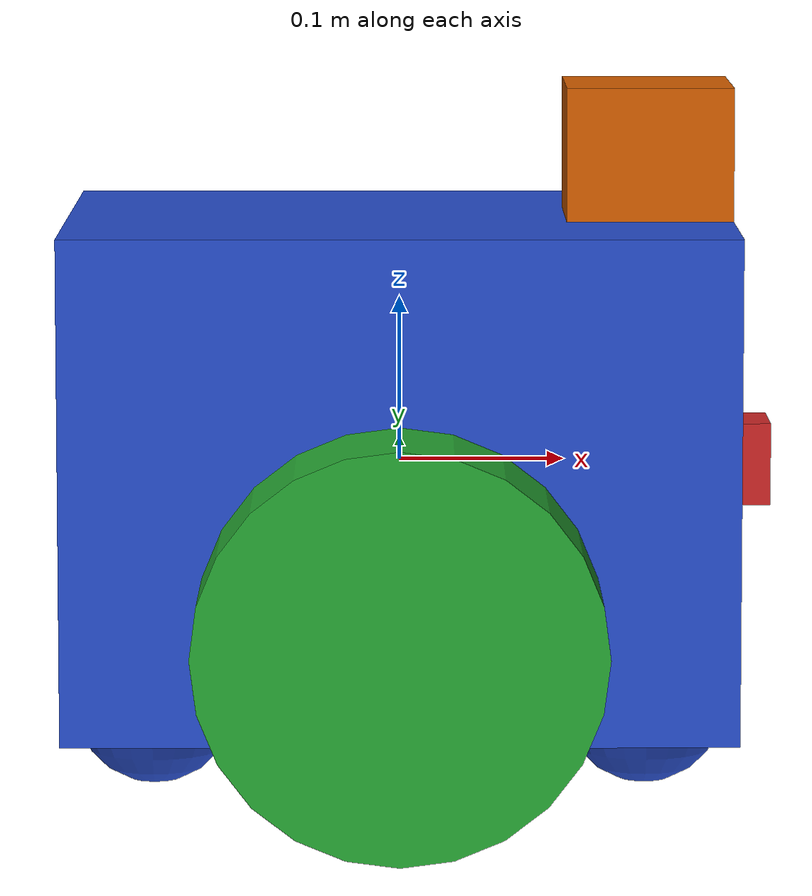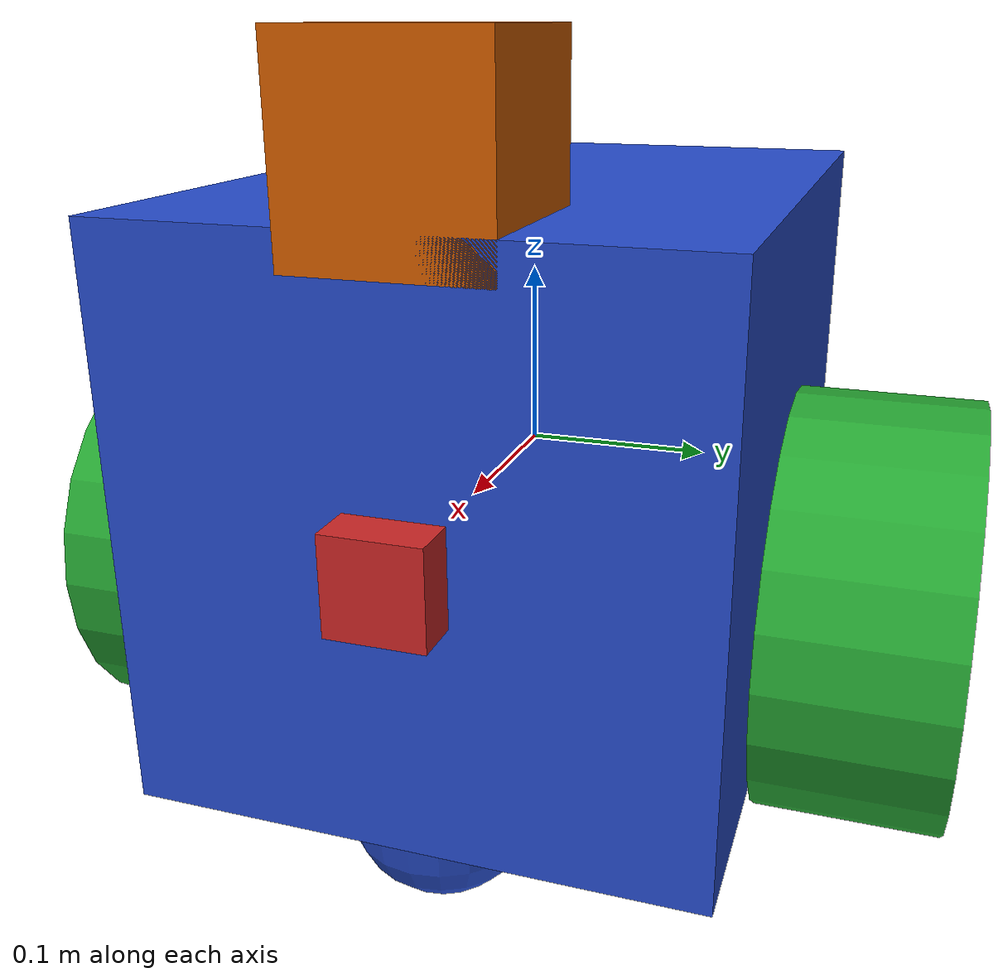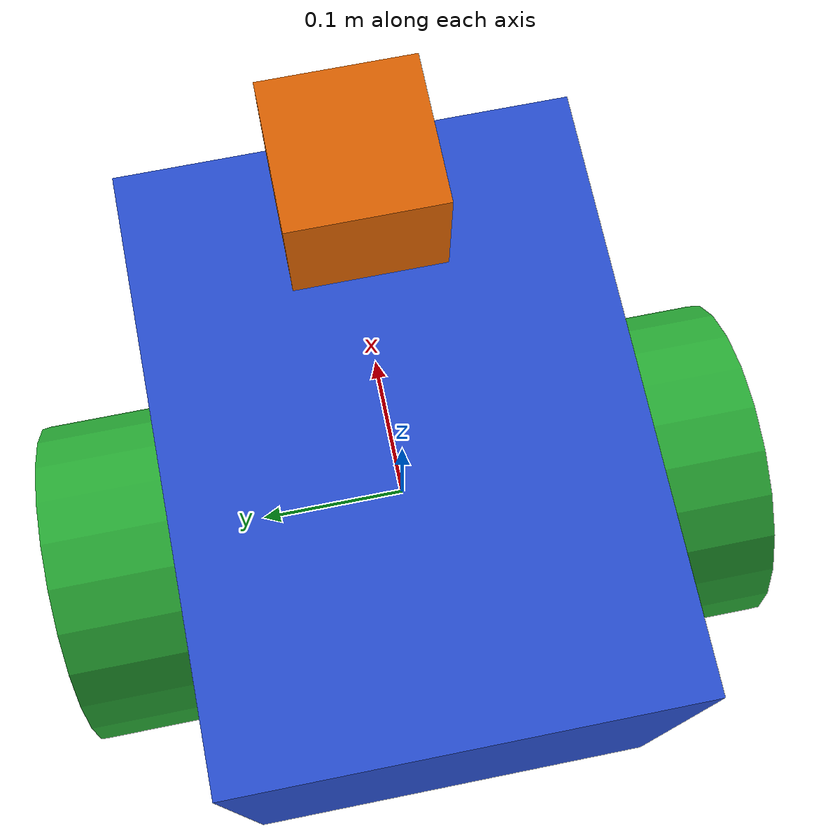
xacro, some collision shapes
<?xml version='1.0'?>

<robot name="my_robot" xmlns:xacro="http://www.ros.org/wiki/xacro">

  <xacro:include filename="$(find my_robot)/urdf/my_robot.gazebo" />

  <link name="robot_footprint"></link>

  <joint name="robot_footprint_joint" type="fixed">
    <origin xyz="0 0 0" rpy="0 0 0" />
    <parent link="robot_footprint"/>
    <child link="chassis" />
  </joint>

  <link name='chassis'>
    <pose>0 0 0.2 0 0 0</pose>

    <inertial>
      <mass value="15.0"/>
      <origin xyz="0.0 0 0" rpy=" 0 0 0"/>
      <inertia
          ixx="0.1" ixy="0" ixz="0"
          iyy="0.1" iyz="0"
          izz="0.1"
      />
    </inertial>

    <collision name='collision'>
      <origin xyz="0 0 0" rpy=" 0 0 0"/>
      <geometry>
        <box size="0.4 0.3 0.3"/>
      </geometry>
    </collision>

    <visual name='chassis_visual'>
      <origin xyz="0 0 0" rpy=" 0 0 0"/>
      <geometry>
        <box size="0.4 0.3 0.3"/>
      </geometry>
    </visual>

    <collision name='back_caster_collision'>
      <origin xyz="-0.15 0 -0.15" rpy=" 0 0 0"/>
      <geometry>
        <sphere radius="0.0499"/>
      </geometry>
    </collision>

    <visual name='back_caster_visual'>
      <origin xyz="-0.15 0 -0.15" rpy=" 0 0 0"/>
      <geometry>
        <sphere radius="0.05"/>
      </geometry>
    </visual>

    <collision name='front_caster_collision'>
      <origin xyz="0.15 0 -0.15" rpy=" 0 0 0"/>
      <geometry>
        <sphere radius="0.0499"/>
      </geometry>
    </collision>

    <visual name='front_caster_visual'>
      <origin xyz="0.15 0 -0.15" rpy=" 0 0 0"/>
      <geometry>
        <sphere radius="0.05"/>
      </geometry>
    </visual>

  </link>

  <link name="left_wheel">

    <collision>
      <origin xyz="0 0 0" rpy="0 1.5707 1.5707"/>
      <geometry>
        <cylinder length="0.1" radius="0.12"/>
      </geometry>
    </collision>

    <visual>
      <origin xyz="0 0 0" rpy="0 1.5707 1.5707"/>
      <geometry>
        <cylinder length="0.1" radius="0.12"/>
      </geometry>
    </visual>

    <inertial>
      <origin xyz="0 0 0" rpy="0 1.5707 1.5707"/>
      <mass value="5"/>
      <inertia
        ixx="0.1" ixy="0" ixz="0"
        iyy="0.1" iyz="0"
        izz="0.1"
      />
    </inertial>

  </link>

  <link name="right_wheel">

    <collision>
      <origin xyz="0 0 0" rpy="0 1.5707 1.5707"/>
      <geometry>
        <cylinder length="0.1" radius="0.12"/>
      </geometry>
    </collision>

    <visual>
      <origin xyz="0 0 0" rpy="0 1.5707 1.5707"/>
      <geometry>
        <cylinder length="0.1" radius="0.12"/>
      </geometry>
    </visual>

    <inertial>
      <origin xyz="0 0 0" rpy="0 1.5707 1.5707"/>
      <mass value="5"/>
      <inertia
        ixx="0.1" ixy="0" ixz="0"
        iyy="0.1" iyz="0"
        izz="0.1"
      />
    </inertial>

  </link>

  <joint type="continuous" name="left_wheel_hinge">
    <origin xyz="0 0.2 -0.08" rpy="0 0 0"/>
    <child link="left_wheel"/>
    <parent link="chassis"/>
    <axis xyz="0 1 0" rpy="0 0 0"/>
    <limit effort="10000" velocity="1000"/>
    <dynamics damping="1.0" friction="1.0"/>
  </joint>

  <joint type="continuous" name="right_wheel_hinge">
    <origin xyz="0 -0.2 -0.08" rpy="0 0 0"/>
    <child link="right_wheel"/>
    <parent link="chassis"/>
    <axis xyz="0 1 0" rpy="0 0 0"/>
    <limit effort="10000" velocity="1000"/>
    <dynamics damping="1.0" friction="1.0"/>
  </joint>

  <link name="camera">

    <collision>
      <origin xyz="0 0 0" rpy="0 0 0"/>
      <geometry>
        <box size="0.05 0.05 0.05"/>
      </geometry>
    </collision>

    <visual>
      <origin xyz="0 0 0" rpy="0 0 0"/>
      <geometry>
        <box size="0.05 0.05 0.05"/>
      </geometry>
    </visual>

    <inertial>
      <origin xyz="0 0 0" rpy="0 0 0"/>
      <mass value="0.1"/>
      <inertia
        ixx="1e-6" ixy="0" ixz="0"
        iyy="1e-6" iyz="0"
        izz="1e-6"
      />
    </inertial>

  </link>

  <joint type="fixed" name="camera_joint">
    <origin xyz="0.2 0 0" rpy="0 0 0"/>
    <child link="camera"/>
    <parent link="chassis"/>
    <axis xyz="0 1 0" rpy="0 0 0"/>
  </joint>

  <link name="hokuyo">

    <collision>
      <origin xyz="0 0 0" rpy="0 0 0"/>
      <geometry>
        <box size="0.1 0.1 0.1"/>
      </geometry>
    </collision>

    <visual>
      <origin xyz="0 0 0" rpy="0 0 0"/>
      <geometry>
        <mesh filename="package://my_robot/meshes/hokuyo.dae"/>
      </geometry>
    </visual>

    <inertial>
      <origin xyz="0 0 0" rpy="0 0 0"/>
      <mass value="1e-5"/>
      <inertia
        ixx="1e-6" ixy="0" ixz="0"
        iyy="1e-6" iyz="0"
        izz="1e-6"
      />
    </inertial>

  </link>

  <joint type="fixed" name="hokuyo_joint">
    <origin xyz="0.15 0 0.18" rpy="0 0 0"/>
    <child link="hokuyo"/>
    <parent link="chassis"/>
    <axis xyz="0 1 0" rpy="0 0 0"/>
  </joint>

  <gazebo reference="left_wheel">
    <material>Gazebo/Green</material>
  </gazebo>
  <gazebo reference="right_wheel">
    <material>Gazebo/Green</material>
  </gazebo>
  <gazebo reference="camera">
    <material>Gazebo/Red</material>
  </gazebo>
  <gazebo reference="chassis">
    <material>Gazebo/Blue</material>
  </gazebo>

</robot>
